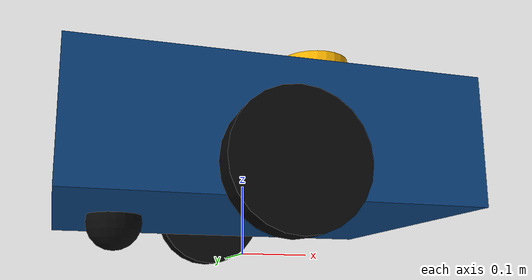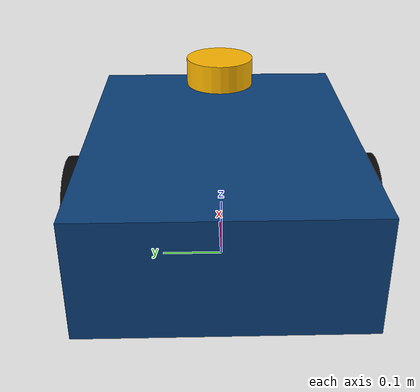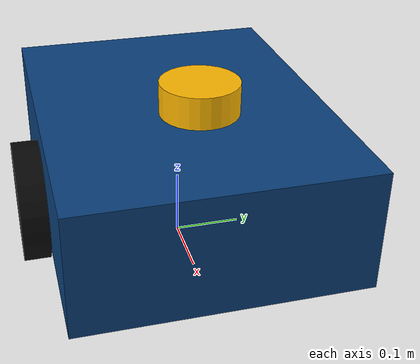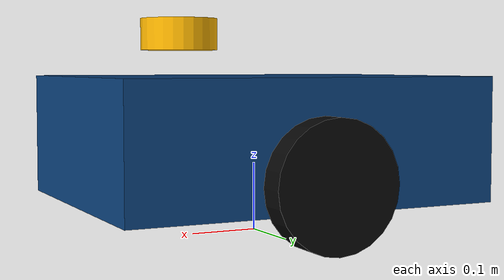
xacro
<?xml version="1.0"?>
<robot xmlns:xacro="http://www.ros.org/wiki/xacro" name="portfolio_amr">
  <xacro:arg name="namespace" default=""/>
  <xacro:property name="wheel_axis_rotation" value="1.5707963267948966"/>
  <xacro:property name="base_length" value="0.55"/>
  <xacro:property name="base_width" value="0.42"/>
  <xacro:property name="base_height" value="0.18"/>
  <xacro:property name="base_mass" value="22.0"/>
  <xacro:property name="wheel_radius" value="0.09"/>
  <xacro:property name="wheel_width" value="0.04"/>
  <xacro:property name="wheel_separation" value="0.46"/>
  <xacro:property name="wheel_mass" value="1.2"/>

  <material name="industrial_blue">
    <color rgba="0.04 0.25 0.48 1.0"/>
  </material>
  <material name="safety_yellow">
    <color rgba="1.0 0.72 0.0 1.0"/>
  </material>
  <material name="rubber_black">
    <color rgba="0.03 0.03 0.03 1.0"/>
  </material>

  <xacro:macro name="box_inertial" params="mass x y z">
    <inertial>
      <mass value="${mass}"/>
      <inertia
        ixx="${mass * (y * y + z * z) / 12.0}" ixy="0.0" ixz="0.0"
        iyy="${mass * (x * x + z * z) / 12.0}" iyz="0.0"
        izz="${mass * (x * x + y * y) / 12.0}"/>
    </inertial>
  </xacro:macro>

  <xacro:macro name="wheel" params="side sign">
    <link name="${side}_wheel_link">
      <visual>
        <origin rpy="${wheel_axis_rotation} 0 0"/>
        <geometry><cylinder radius="${wheel_radius}" length="${wheel_width}"/></geometry>
        <material name="rubber_black"/>
      </visual>
      <collision>
        <origin rpy="${wheel_axis_rotation} 0 0"/>
        <geometry><cylinder radius="${wheel_radius}" length="${wheel_width}"/></geometry>
      </collision>
      <inertial>
        <origin rpy="${wheel_axis_rotation} 0 0"/>
        <mass value="${wheel_mass}"/>
        <inertia
          ixx="${wheel_mass * (3.0 * wheel_radius * wheel_radius + wheel_width * wheel_width) / 12.0}"
          ixy="0.0" ixz="0.0"
          iyy="${wheel_mass * wheel_radius * wheel_radius / 2.0}"
          iyz="0.0"
          izz="${wheel_mass * (3.0 * wheel_radius * wheel_radius + wheel_width * wheel_width) / 12.0}"/>
      </inertial>
    </link>
    <joint name="${side}_wheel_joint" type="continuous">
      <parent link="base_link"/>
      <child link="${side}_wheel_link"/>
      <origin xyz="0 ${sign * wheel_separation / 2.0} -0.05"/>
      <axis xyz="0 1 0"/>
      <dynamics damping="0.05" friction="0.02"/>
    </joint>
    <gazebo reference="${side}_wheel_link">
      <mu1>1.2</mu1>
      <mu2>1.2</mu2>
    </gazebo>
  </xacro:macro>

  <link name="base_footprint"/>
  <joint name="base_footprint_joint" type="fixed">
    <parent link="base_footprint"/>
    <child link="base_link"/>
    <origin xyz="0 0 0.14"/>
  </joint>

  <link name="base_link">
    <visual>
      <geometry><box size="${base_length} ${base_width} ${base_height}"/></geometry>
      <material name="industrial_blue"/>
    </visual>
    <collision>
      <geometry><box size="${base_length} ${base_width} ${base_height}"/></geometry>
    </collision>
    <xacro:box_inertial mass="${base_mass}" x="${base_length}" y="${base_width}" z="${base_height}"/>
  </link>
  <gazebo reference="base_link"><material>Gazebo/Blue</material></gazebo>

  <xacro:wheel side="left" sign="1.0"/>
  <xacro:wheel side="right" sign="-1.0"/>

  <link name="rear_caster_link">
    <visual>
      <geometry><sphere radius="0.04"/></geometry>
      <material name="rubber_black"/>
    </visual>
    <collision><geometry><sphere radius="0.04"/></geometry></collision>
    <inertial>
      <mass value="0.25"/>
      <inertia ixx="0.00016" ixy="0" ixz="0" iyy="0.00016" iyz="0" izz="0.00016"/>
    </inertial>
  </link>
  <joint name="rear_caster_joint" type="fixed">
    <parent link="base_link"/>
    <child link="rear_caster_link"/>
    <origin xyz="-0.19 0 -0.10"/>
  </joint>
  <gazebo reference="rear_caster_link">
    <mu1>0.02</mu1><mu2>0.02</mu2>
  </gazebo>

  <link name="lidar_link">
    <visual>
      <geometry><cylinder radius="0.055" length="0.045"/></geometry>
      <material name="safety_yellow"/>
    </visual>
    <collision><geometry><cylinder radius="0.055" length="0.045"/></geometry></collision>
    <inertial>
      <mass value="0.25"/>
      <inertia ixx="0.00023" ixy="0" ixz="0" iyy="0.00023" iyz="0" izz="0.00038"/>
    </inertial>
  </link>
  <joint name="lidar_joint" type="fixed">
    <parent link="base_link"/>
    <child link="lidar_link"/>
    <origin xyz="0.12 0 0.15"/>
  </joint>

  <link name="imu_link"/>
  <joint name="imu_joint" type="fixed">
    <parent link="base_link"/>
    <child link="imu_link"/>
    <origin xyz="0 0 0.02"/>
  </joint>

  <gazebo reference="lidar_link">
    <sensor name="front_lidar" type="gpu_lidar">
      <topic>$(arg namespace)/scan</topic>
      <update_rate>15</update_rate>
      <lidar>
        <scan><horizontal><samples>720</samples><resolution>1</resolution><min_angle>-${3.141592653589793}</min_angle><max_angle>${3.141592653589793}</max_angle></horizontal></scan>
        <range><min>0.12</min><max>12.0</max><resolution>0.01</resolution></range>
        <noise><type>gaussian</type><mean>0.0</mean><stddev>0.005</stddev></noise>
      </lidar>
      <always_on>true</always_on>
      <visualize>true</visualize>
    </sensor>
  </gazebo>

  <gazebo reference="imu_link">
    <sensor name="imu" type="imu">
      <topic>$(arg namespace)/imu/data</topic>
      <update_rate>100</update_rate>
      <always_on>true</always_on>
    </sensor>
  </gazebo>

  <ros2_control name="GazeboSystem" type="system">
    <hardware>
      <plugin>gz_ros2_control/GazeboSimSystem</plugin>
    </hardware>
    <joint name="left_wheel_joint">
      <command_interface name="velocity">
        <param name="min">-10.0</param><param name="max">10.0</param>
      </command_interface>
      <state_interface name="position"/>
      <state_interface name="velocity"/>
    </joint>
    <joint name="right_wheel_joint">
      <command_interface name="velocity">
        <param name="min">-10.0</param><param name="max">10.0</param>
      </command_interface>
      <state_interface name="position"/>
      <state_interface name="velocity"/>
    </joint>
  </ros2_control>

  <gazebo>
    <plugin filename="gz_ros2_control-system" name="gz_ros2_control::GazeboSimROS2ControlPlugin">
      <parameters>$(find amr_description)/config/controllers.yaml</parameters>
      <ros><namespace>$(arg namespace)</namespace></ros>
    </plugin>
  </gazebo>
</robot>
